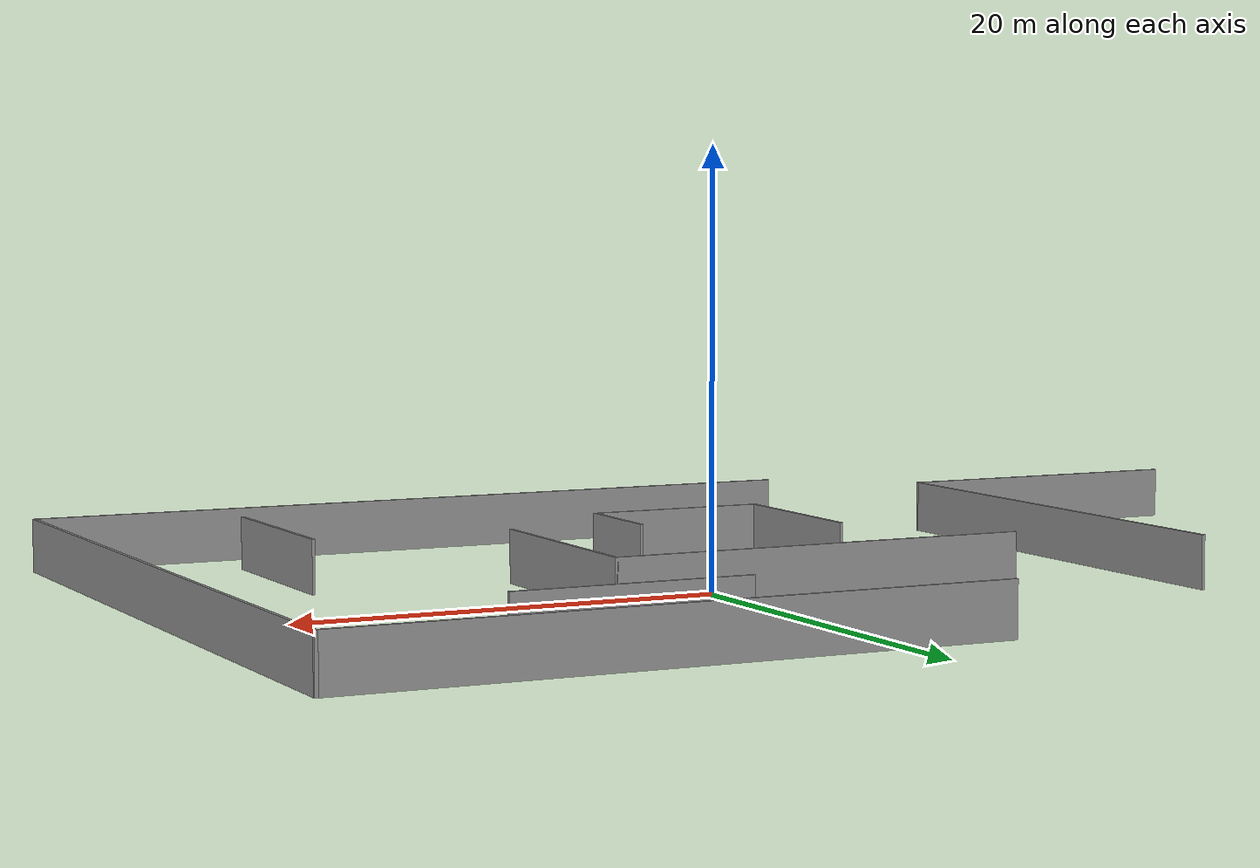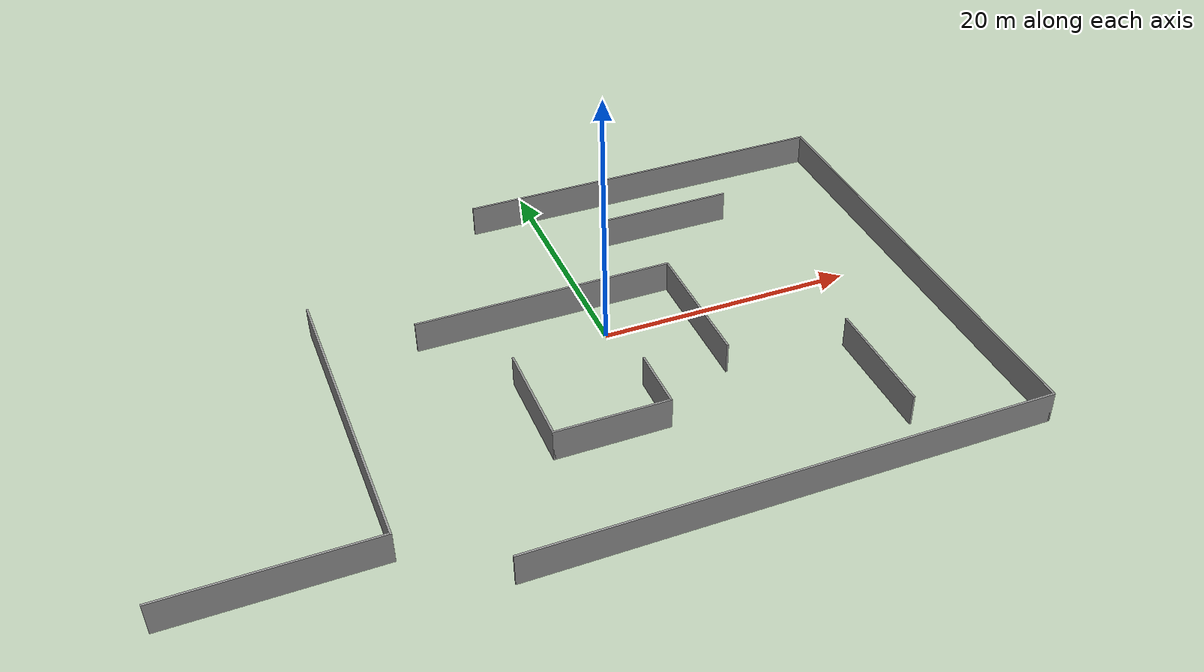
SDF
<?xml version='1.0'?>
<sdf version='1.7'>
  <model name='wall_model'>
    <pose>-5.13898 -1.91134 0 0 -0 0</pose>
    <link name='Wall_64'>
      <collision name='Wall_64_Collision'>
        <geometry>
          <box>
            <size>20.25 0.15 2.5</size>
          </box>
        </geometry>
        <pose>0 0 1.25 0 -0 0</pose>
      </collision>
      <visual name='Wall_64_Visual'>
        <pose>0 0 1.25 0 -0 0</pose>
        <geometry>
          <box>
            <size>20.25 0.15 2.5</size>
          </box>
        </geometry>
        <material>
          <script>
            <uri>file://media/materials/scripts/gazebo.material</uri>
            <name>Gazebo/Grey</name>
          </script>
          <ambient>1 1 1 1</ambient>
        </material>
        <meta>
          <layer>0</layer>
        </meta>
      </visual>
      <pose>1.6663 5.62018 0 0 -0 0</pose>
    </link>
    <link name='Wall_65'>
      <collision name='Wall_65_Collision'>
        <geometry>
          <box>
            <size>11 0.15 2.5</size>
          </box>
        </geometry>
        <pose>0 0 1.25 0 -0 0</pose>
      </collision>
      <visual name='Wall_65_Visual'>
        <pose>0 0 1.25 0 -0 0</pose>
        <geometry>
          <box>
            <size>11 0.15 2.5</size>
          </box>
        </geometry>
        <material>
          <script>
            <uri>file://media/materials/scripts/gazebo.material</uri>
            <name>Gazebo/Grey</name>
          </script>
          <ambient>1 1 1 1</ambient>
        </material>
        <meta>
          <layer>0</layer>
        </meta>
      </visual>
      <pose>11.7163 0.195178 0 0 -0 -1.5708</pose>
    </link>
    <link name='Wall_67'>
      <collision name='Wall_67_Collision'>
        <geometry>
          <box>
            <size>8.5 0.15 2.5</size>
          </box>
        </geometry>
        <pose>0 0 1.25 0 -0 0</pose>
      </collision>
      <visual name='Wall_67_Visual'>
        <pose>0 0 1.25 0 -0 0</pose>
        <geometry>
          <box>
            <size>8.5 0.15 2.5</size>
          </box>
        </geometry>
        <material>
          <script>
            <uri>file://media/materials/scripts/gazebo.material</uri>
            <name>Gazebo/Grey</name>
          </script>
          <ambient>1 1 1 1</ambient>
        </material>
        <meta>
          <layer>0</layer>
        </meta>
      </visual>
      <pose>-3.01046 -4.99207 0 0 -0 -1.5708</pose>
    </link>
    <link name='Wall_68'>
      <collision name='Wall_68_Collision'>
        <geometry>
          <box>
            <size>8.75 0.15 2.5</size>
          </box>
        </geometry>
        <pose>0 0 1.25 0 -0 0</pose>
      </collision>
      <visual name='Wall_68_Visual'>
        <pose>0 0 1.25 0 -0 0</pose>
        <geometry>
          <box>
            <size>8.75 0.15 2.5</size>
          </box>
        </geometry>
        <material>
          <script>
            <uri>file://media/materials/scripts/gazebo.material</uri>
            <name>Gazebo/Grey</name>
          </script>
          <ambient>1 1 1 1</ambient>
        </material>
        <meta>
          <layer>0</layer>
        </meta>
      </visual>
      <pose>1.28954 -9.16707 0 0 -0 0</pose>
    </link>
    <link name='Wall_69'>
      <collision name='Wall_69_Collision'>
        <geometry>
          <box>
            <size>5 0.15 2.5</size>
          </box>
        </geometry>
        <pose>0 0 1.25 0 -0 0</pose>
      </collision>
      <visual name='Wall_69_Visual'>
        <pose>0 0 1.25 0 -0 0</pose>
        <geometry>
          <box>
            <size>5 0.15 2.5</size>
          </box>
        </geometry>
        <material>
          <script>
            <uri>file://media/materials/scripts/gazebo.material</uri>
            <name>Gazebo/Grey</name>
          </script>
          <ambient>1 1 1 1</ambient>
        </material>
        <meta>
          <layer>0</layer>
        </meta>
      </visual>
      <pose>5.58954 -6.74207 0 0 -0 1.5708</pose>
    </link>
    <link name='Wall_71'>
      <collision name='Wall_71_Collision'>
        <geometry>
          <box>
            <size>24.5 0.15 2.5</size>
          </box>
        </geometry>
        <pose>0 0 1.25 0 -0 0</pose>
      </collision>
      <visual name='Wall_71_Visual'>
        <pose>0 0 1.25 0 -0 0</pose>
        <geometry>
          <box>
            <size>24.5 0.15 2.5</size>
          </box>
        </geometry>
        <material>
          <script>
            <uri>file://media/materials/scripts/gazebo.material</uri>
            <name>Gazebo/Grey</name>
          </script>
          <ambient>1 1 1 1</ambient>
        </material>
        <meta>
          <layer>0</layer>
        </meta>
      </visual>
      <pose>-15.353 -1.81999 0 0 -0 -1.5708</pose>
    </link>
    <link name='Wall_72'>
      <collision name='Wall_72_Collision'>
        <geometry>
          <box>
            <size>15 0.15 2.5</size>
          </box>
        </geometry>
        <pose>0 0 1.25 0 -0 0</pose>
      </collision>
      <visual name='Wall_72_Visual'>
        <pose>0 0 1.25 0 -0 0</pose>
        <geometry>
          <box>
            <size>15 0.15 2.5</size>
          </box>
        </geometry>
        <material>
          <script>
            <uri>file://media/materials/scripts/gazebo.material</uri>
            <name>Gazebo/Grey</name>
          </script>
          <ambient>1 1 1 1</ambient>
        </material>
        <meta>
          <layer>0</layer>
        </meta>
      </visual>
      <pose>-22.778 -13.995 0 0 -0 3.14159</pose>
    </link>
    <link name='Wall_74'>
      <collision name='Wall_74_Collision'>
        <geometry>
          <box>
            <size>39.25 0.15 2.5</size>
          </box>
        </geometry>
        <pose>0 0 1.25 0 -0 0</pose>
      </collision>
      <visual name='Wall_74_Visual'>
        <pose>0 0 1.25 0 -0 0</pose>
        <geometry>
          <box>
            <size>39.25 0.15 2.5</size>
          </box>
        </geometry>
        <material>
          <script>
            <uri>file://media/materials/scripts/gazebo.material</uri>
            <name>Gazebo/Grey</name>
          </script>
          <ambient>1 1 1 1</ambient>
        </material>
        <meta>
          <layer>0</layer>
        </meta>
      </visual>
      <pose>10.6529 -18.675 0 0 -0 0</pose>
    </link>
    <link name='Wall_75'>
      <collision name='Wall_75_Collision'>
        <geometry>
          <box>
            <size>37.5 0.15 2.5</size>
          </box>
        </geometry>
        <pose>0 0 1.25 0 -0 0</pose>
      </collision>
      <visual name='Wall_75_Visual'>
        <pose>0 0 1.25 0 -0 0</pose>
        <geometry>
          <box>
            <size>37.5 0.15 2.5</size>
          </box>
        </geometry>
        <material>
          <script>
            <uri>file://media/materials/scripts/gazebo.material</uri>
            <name>Gazebo/Grey</name>
          </script>
          <ambient>1 1 1 1</ambient>
        </material>
        <meta>
          <layer>0</layer>
        </meta>
      </visual>
      <pose>30.2029 0 0 0 -0 1.5708</pose>
    </link>
    <link name='Wall_76'>
      <collision name='Wall_76_Collision'>
        <geometry>
          <box>
            <size>30.25 0.15 2.5</size>
          </box>
        </geometry>
        <pose>0 0 1.25 0 -0 0</pose>
      </collision>
      <visual name='Wall_76_Visual'>
        <pose>0 0 1.25 0 -0 0</pose>
        <geometry>
          <box>
            <size>30.25 0.15 2.5</size>
          </box>
        </geometry>
        <material>
          <script>
            <uri>file://media/materials/scripts/gazebo.material</uri>
            <name>Gazebo/Grey</name>
          </script>
          <ambient>1 1 1 1</ambient>
        </material>
        <meta>
          <layer>0</layer>
        </meta>
      </visual>
      <pose>15.1529 18.675 0 0 -0 3.14159</pose>
    </link>
    <link name='Wall_78'>
      <collision name='Wall_78_Collision'>
        <geometry>
          <box>
            <size>11 0.15 2.5</size>
          </box>
        </geometry>
        <pose>0 0 1.25 0 -0 0</pose>
      </collision>
      <visual name='Wall_78_Visual'>
        <pose>0 0 1.25 0 -0 0</pose>
        <geometry>
          <box>
            <size>11 0.15 2.5</size>
          </box>
        </geometry>
        <material>
          <script>
            <uri>file://media/materials/scripts/gazebo.material</uri>
            <name>Gazebo/Grey</name>
          </script>
          <ambient>1 1 1 1</ambient>
        </material>
        <meta>
          <layer>0</layer>
        </meta>
      </visual>
      <pose>14.4941 12.9503 0 0 -0 0</pose>
    </link>
    <link name='Wall_80'>
      <collision name='Wall_80_Collision'>
        <geometry>
          <box>
            <size>9.5 0.15 2.5</size>
          </box>
        </geometry>
        <pose>0 0 1.25 0 -0 0</pose>
      </collision>
      <visual name='Wall_80_Visual'>
        <pose>0 0 1.25 0 -0 0</pose>
        <geometry>
          <box>
            <size>9.5 0.15 2.5</size>
          </box>
        </geometry>
        <material>
          <script>
            <uri>file://media/materials/scripts/gazebo.material</uri>
            <name>Gazebo/Grey</name>
          </script>
          <ambient>1 1 1 1</ambient>
        </material>
        <meta>
          <layer>0</layer>
        </meta>
      </visual>
      <pose>21.1286 -10.5522 0 0 -0 -1.5708</pose>
    </link>
    <static>1</static>
  </model>
</sdf>
